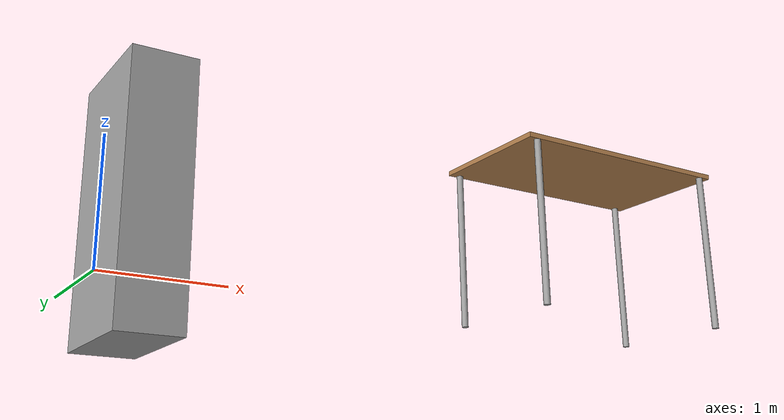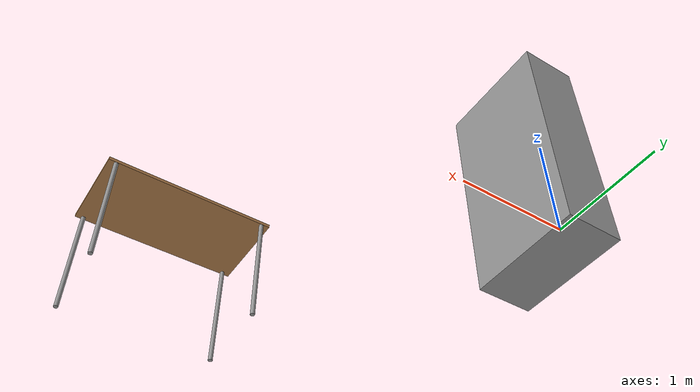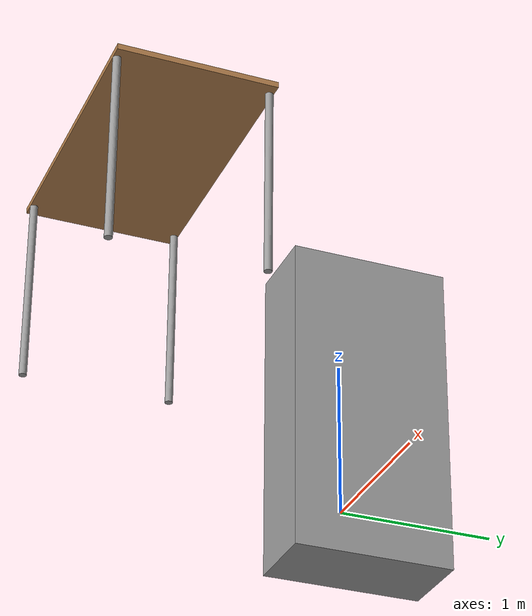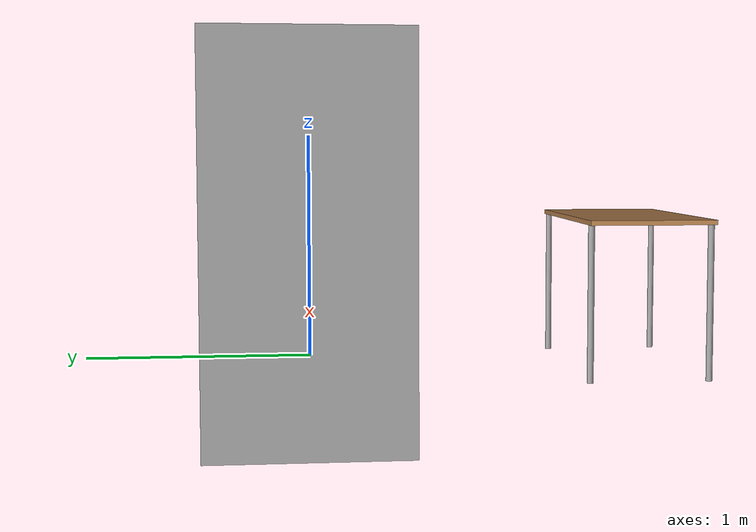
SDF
<?xml version='1.0'?>
<sdf version='1.7'>
  <model name='unit_box'>
    <link name='link'>
      <inertial>
        <mass>1</mass>
        <inertia>
          <ixx>0.166667</ixx>
          <ixy>0</ixy>
          <ixz>0</ixz>
          <iyy>0.166667</iyy>
          <iyz>0</iyz>
          <izz>0.166667</izz>
        </inertia>
        <pose>0 0 0 0 -0 0</pose>
      </inertial>
      <self_collide>0</self_collide>
      <enable_wind>0</enable_wind>
      <kinematic>0</kinematic>
      <pose>0.25 -0 0.5 0 -0 0</pose>
      <gravity>1</gravity>
      <visual name='visual'>
        <geometry>
          <box>
            <size>0.5 1 2</size>
          </box>
        </geometry>
        <material>
          <script>
            <name>Gazebo/Grey</name>
            <uri>file://media/materials/scripts/gazebo.material</uri>
          </script>
          <shader type='pixel'>
            <normal_map>__default__</normal_map>
          </shader>
          <ambient>0.3 0.3 0.3 1</ambient>
          <diffuse>0.7 0.7 0.7 1</diffuse>
          <specular>0.01 0.01 0.01 1</specular>
          <emissive>0 0 0 1</emissive>
        </material>
        <pose>0 0 0 0 -0 0</pose>
        <transparency>0</transparency>
        <cast_shadows>1</cast_shadows>
      </visual>
      <collision name='collision'>
        <laser_retro>0</laser_retro>
        <max_contacts>10</max_contacts>
        <pose>0 0 0 0 -0 0</pose>
        <geometry>
          <box>
            <size>0.5 1 2</size>
          </box>
        </geometry>
        <surface>
          <friction>
            <ode>
              <mu>1</mu>
              <mu2>1</mu2>
              <fdir1>0 0 0</fdir1>
              <slip1>0</slip1>
              <slip2>0</slip2>
            </ode>
            <torsional>
              <coefficient>1</coefficient>
              <patch_radius>0</patch_radius>
              <surface_radius>0</surface_radius>
              <use_patch_radius>1</use_patch_radius>
              <ode>
                <slip>0</slip>
              </ode>
            </torsional>
          </friction>
          <bounce>
            <restitution_coefficient>0</restitution_coefficient>
            <threshold>1e+06</threshold>
          </bounce>
          <contact>
            <collide_without_contact>0</collide_without_contact>
            <collide_without_contact_bitmask>1</collide_without_contact_bitmask>
            <collide_bitmask>1</collide_bitmask>
            <ode>
              <soft_cfm>0</soft_cfm>
              <soft_erp>0.2</soft_erp>
              <kp>1e+13</kp>
              <kd>1</kd>
              <max_vel>0.01</max_vel>
              <min_depth>0</min_depth>
            </ode>
            <bullet>
              <split_impulse>1</split_impulse>
              <split_impulse_penetration_threshold>-0.01</split_impulse_penetration_threshold>
              <soft_cfm>0</soft_cfm>
              <soft_erp>0.2</soft_erp>
              <kp>1e+13</kp>
              <kd>1</kd>
            </bullet>
          </contact>
        </surface>
      </collision>
    </link>
    <model name='table'>
      <static>1</static>
      <link name='link'>
        <collision name='surface'>
          <pose>0 0 1 0 -0 0</pose>
          <geometry>
            <box>
              <size>1.5 0.8 0.03</size>
            </box>
          </geometry>
          <surface>
            <friction>
              <ode>
                <mu>0.6</mu>
                <mu2>0.6</mu2>
              </ode>
            </friction>
          </surface>
        </collision>
        <visual name='visual1'>
          <pose>0 0 1 0 -0 0</pose>
          <geometry>
            <box>
              <size>1.5 0.8 0.03</size>
            </box>
          </geometry>
          <material>
            <script>
              <uri>file://media/materials/scripts/gazebo.material</uri>
              <name>Gazebo/Wood</name>
            </script>
          </material>
        </visual>
        <collision name='front_left_leg'>
          <pose>0.68 0.38 0.5 0 -0 0</pose>
          <geometry>
            <cylinder>
              <radius>0.02</radius>
              <length>1</length>
            </cylinder>
          </geometry>
        </collision>
        <visual name='front_left_leg'>
          <pose>0.68 0.38 0.5 0 -0 0</pose>
          <geometry>
            <cylinder>
              <radius>0.02</radius>
              <length>1</length>
            </cylinder>
          </geometry>
          <material>
            <script>
              <uri>file://media/materials/scripts/gazebo.material</uri>
              <name>Gazebo/Grey</name>
            </script>
          </material>
        </visual>
        <collision name='front_right_leg'>
          <pose>0.68 -0.38 0.5 0 -0 0</pose>
          <geometry>
            <cylinder>
              <radius>0.02</radius>
              <length>1</length>
            </cylinder>
          </geometry>
        </collision>
        <visual name='front_right_leg'>
          <pose>0.68 -0.38 0.5 0 -0 0</pose>
          <geometry>
            <cylinder>
              <radius>0.02</radius>
              <length>1</length>
            </cylinder>
          </geometry>
          <material>
            <script>
              <uri>file://media/materials/scripts/gazebo.material</uri>
              <name>Gazebo/Grey</name>
            </script>
          </material>
        </visual>
        <collision name='back_right_leg'>
          <pose>-0.68 -0.38 0.5 0 -0 0</pose>
          <geometry>
            <cylinder>
              <radius>0.02</radius>
              <length>1</length>
            </cylinder>
          </geometry>
        </collision>
        <visual name='back_right_leg'>
          <pose>-0.68 -0.38 0.5 0 -0 0</pose>
          <geometry>
            <cylinder>
              <radius>0.02</radius>
              <length>1</length>
            </cylinder>
          </geometry>
          <material>
            <script>
              <uri>file://media/materials/scripts/gazebo.material</uri>
              <name>Gazebo/Grey</name>
            </script>
          </material>
        </visual>
        <collision name='back_left_leg'>
          <pose>-0.68 0.38 0.5 0 -0 0</pose>
          <geometry>
            <cylinder>
              <radius>0.02</radius>
              <length>1</length>
            </cylinder>
          </geometry>
        </collision>
        <visual name='back_left_leg'>
          <pose>-0.68 0.38 0.5 0 -0 0</pose>
          <geometry>
            <cylinder>
              <radius>0.02</radius>
              <length>1</length>
            </cylinder>
          </geometry>
          <material>
            <script>
              <uri>file://media/materials/scripts/gazebo.material</uri>
              <name>Gazebo/Grey</name>
            </script>
          </material>
        </visual>
      </link>
      <pose>2.51724 -2.11166 -0.506893 0 -0 0</pose>
    </model>
    <static>1</static>
    <allow_auto_disable>1</allow_auto_disable>
  </model>
</sdf>
